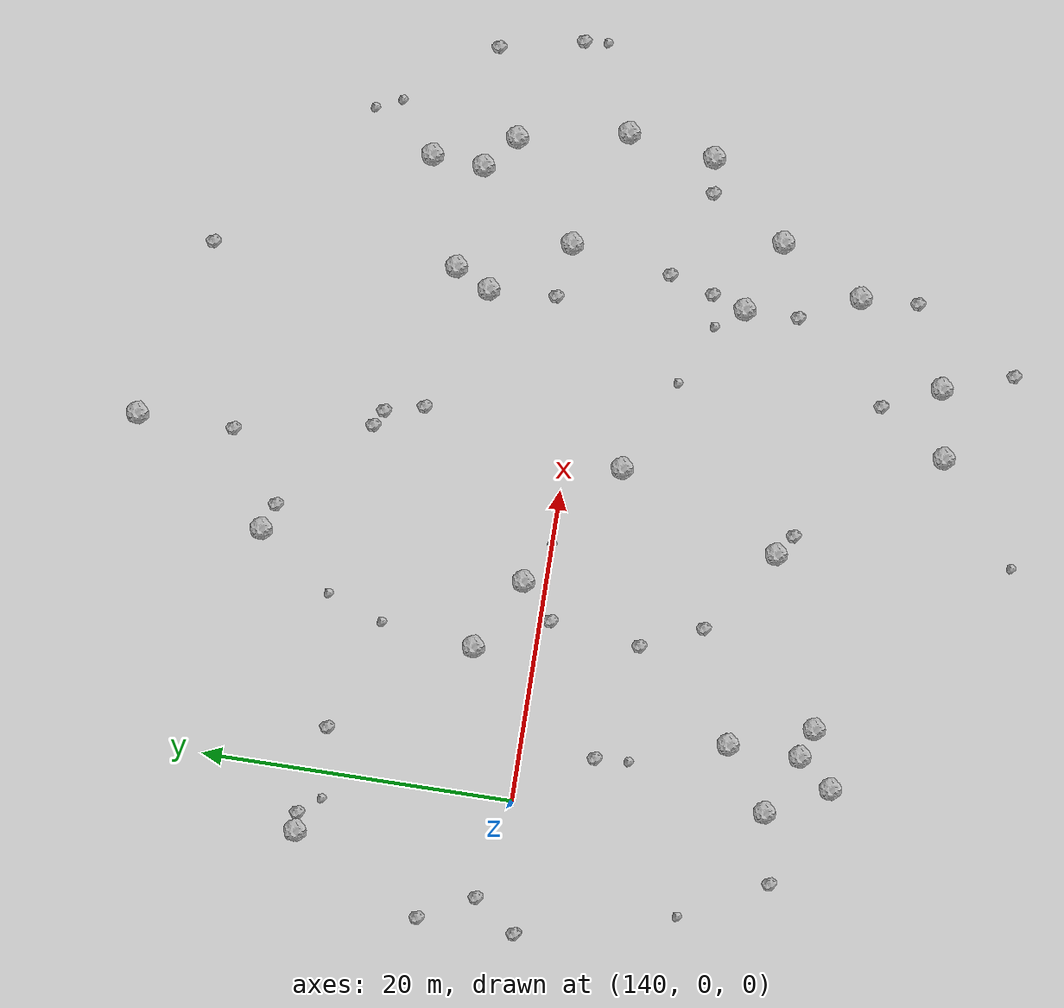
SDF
<sdf version="1.6">
 <world name="default">
  <include><uri>model://sun</uri></include>
  <model name="rock1_4_2">
   <include><uri>model://rock1</uri><pose>173.2920726651725 -9.883927966990228 0.5 0 0 0</pose></include>
  </model>
  <model name="rock1_4_3">
   <include><uri>model://rock1</uri><pose>165.7927010193815 -23.864831941311863 0.5 0 0 0</pose></include>
  </model>
  <model name="rock1_4_4">
   <include><uri>model://rock1</uri><pose>172.0938098103728 6.4987398337395845 0.5 0 0 0</pose></include>
  </model>
  <model name="rock1_4_5">
   <include><uri>model://rock1</uri><pose>162.05214207642794 -3.679491698687805 0.5 0 0 0</pose></include>
  </model>
  <model name="rock1_4_6">
   <include><uri>model://rock1</uri><pose>183.41079800805323 -0.8690768137374469 0.5 0 0 0</pose></include>
  </model>
  <model name="rock1_4_7">
   <include><uri>model://rock1</uri><pose>153.97237989263016 1.4452110576188346 0.5 0 0 0</pose></include>
  </model>
  <model name="rock1_4_8">
   <include><uri>model://rock1</uri><pose>149.37118563068685 3.954546829192026 0.5 0 0 0</pose></include>
  </model>
  <model name="rock1_4_9">
   <include><uri>model://rock1</uri><pose>145.61689614415383 -17.623374874773713 0.5 0 0 0</pose></include>
  </model>
  <model name="rock1_4_10">
   <include><uri>model://rock1</uri><pose>180.11019307238783 11.385242140425703 0.5 0 0 0</pose></include>
  </model>
  <model name="rock1_4_11">
   <include><uri>model://rock1</uri><pose>143.8843023636323 -19.841323630577335 0.5 0 0 0</pose></include>
  </model>
  <model name="rock1_4_12">
   <include><uri>model://rock1</uri><pose>170.18320254073177 -23.081588381636294 0.5 0 0 0</pose></include>
  </model>
  <model name="rock1_4_13">
   <include><uri>model://rock1</uri><pose>141.77460329374617 -15.93079078366554 0.5 0 0 0</pose></include>
  </model>
  <model name="rock1_4_14">
   <include><uri>model://rock1</uri><pose>177.9228637751346 -11.689131440030913 0.5 0 0 0</pose></include>
  </model>
  <model name="rock1_4_15">
   <include><uri>model://rock1</uri><pose>160.85536051091103 27.43847223861986 0.5 0 0 0</pose></include>
  </model>
  <model name="rock1_4_16">
   <include><uri>model://rock1</uri><pose>173.214709317504 8.755429576058155 0.5 0 0 0</pose></include>
  </model>
  <model name="rock1_4_17">
   <include><uri>model://rock1</uri><pose>175.79476830132225 1.6680764953584166 0.5 0 0 0</pose></include>
  </model>
  <model name="rock1_4_18">
   <include><uri>model://rock1</uri><pose>179.9005911071718 8.038715967701613 0.5 0 0 0</pose></include>
  </model>
  <model name="rock1_4_19">
   <include><uri>model://rock1</uri><pose>147.48134839645823 -18.25957367758657 0.5 0 0 0</pose></include>
  </model>
  <model name="rock1_4_20">
   <include><uri>model://rock1</uri><pose>175.1435564738477 -17.113533226225787 0.5 0 0 0</pose></include>
  </model>
  <model name="rock1_4_21">
   <include><uri>model://rock1</uri><pose>158.11396734641556 -14.207853692754329 0.5 0 0 0</pose></include>
  </model>
  <model name="rock1_4_22">
   <include><uri>model://rock1</uri><pose>154.74515820263392 18.479796634942772 0.5 0 0 0</pose></include>
  </model>
  <model name="rock1_4_23">
   <include><uri>model://rock1</uri><pose>182.64804861643455 -6.487580562604801 0.5 0 0 0</pose></include>
  </model>
  <model name="rock1_4_24">
   <include><uri>model://rock1</uri><pose>182.02273460936283 6.189321033892497 0.5 0 0 0</pose></include>
  </model>
  <model name="rock1_4_25">
   <include><uri>model://rock1</uri><pose>136.1339123159862 13.34557204190991 0.5 0 0 0</pose></include>
  </model>
  <model name="rock1_4_26">
   <include><uri>model://rock1</uri><pose>145.6779372494825 -12.99927361382072 0.5 0 0 0</pose></include>
  </model>
  <model name="rock2_4_0">
   <include><uri>model://rock2</uri><pose>180.37899698523623 -6.786027845286103 0.3 0 0 0</pose></include>
  </model>
  <model name="rock2_4_1">
   <include><uri>model://rock2</uri><pose>173.92935269059004 -7.711338693995167 0.3 0 0 0</pose></include>
  </model>
  <model name="rock2_4_2">
   <include><uri>model://rock2</uri><pose>175.32872909775432 -20.798713399729504 0.3 0 0 0</pose></include>
  </model>
  <model name="rock2_4_3">
   <include><uri>model://rock2</uri><pose>173.28758809659425 -13.34770420126145 0.3 0 0 0</pose></include>
  </model>
  <model name="rock2_4_4">
   <include><uri>model://rock2</uri><pose>150.9870519077569 -6.473581556030378 0.3 0 0 0</pose></include>
  </model>
  <model name="rock2_4_5">
   <include><uri>model://rock2</uri><pose>151.70951015164775 -0.6398018075412715 0.3 0 0 0</pose></include>
  </model>
  <model name="rock2_4_6">
   <include><uri>model://rock2</uri><pose>171.65080758066784 -27.562981206936122 0.3 0 0 0</pose></include>
  </model>
  <model name="rock2_4_7">
   <include><uri>model://rock2</uri><pose>163.37305451172193 11.91932170288409 0.3 0 0 0</pose></include>
  </model>
  <model name="rock2_4_8">
   <include><uri>model://rock2</uri><pose>187.62951227656862 8.24458293419292 0.3 0 0 0</pose></include>
  </model>
  <model name="rock2_4_9">
   <include><uri>model://rock2</uri><pose>142.88758221231876 12.370413073194307 0.3 0 0 0</pose></include>
  </model>
  <model name="rock2_4_10">
   <include><uri>model://rock2</uri><pose>152.71259881890205 -10.36356328224468 0.3 0 0 0</pose></include>
  </model>
  <model name="rock2_4_11">
   <include><uri>model://rock2</uri><pose>188.81659372623858 2.8889676906714925 0.3 0 0 0</pose></include>
  </model>
  <model name="rock2_4_12">
   <include><uri>model://rock2</uri><pose>159.41243124466803 -15.139514985129791 0.3 0 0 0</pose></include>
  </model>
  <model name="rock2_4_13">
   <include><uri>model://rock2</uri><pose>172.46226035678356 24.39825173864414 0.3 0 0 0</pose></include>
  </model>
  <model name="rock2_4_14">
   <include><uri>model://rock2</uri><pose>137.2503097601685 13.41829786811497 0.3 0 0 0</pose></include>
  </model>
  <model name="rock2_4_15">
   <include><uri>model://rock2</uri><pose>156.4081559077962 17.830719198987637 0.3 0 0 0</pose></include>
  </model>
  <model name="rock2_4_16">
   <include><uri>model://rock2</uri><pose>160.80277462251064 21.264242502392577 0.3 0 0 0</pose></include>
  </model>
  <model name="rock2_4_17">
   <include><uri>model://rock2</uri><pose>162.3546450389025 12.469518756130938 0.3 0 0 0</pose></include>
  </model>
  <model name="rock2_4_18">
   <include><uri>model://rock2</uri><pose>174.77731291254932 -4.840367304718548 0.3 0 0 0</pose></include>
  </model>
  <model name="rock2_4_19">
   <include><uri>model://rock2</uri><pose>168.44744793404732 -19.447143607388597 0.3 0 0 0</pose></include>
  </model>
  <model name="rock2_4_20">
   <include><uri>model://rock2</uri><pose>137.32453168967868 -16.913646419307444 0.3 0 0 0</pose></include>
  </model>
  <model name="rock2_4_21">
   <include><uri>model://rock2</uri><pose>133.6498755750877 1.382539890047724 0.3 0 0 0</pose></include>
  </model>
  <model name="rock2_4_22">
   <include><uri>model://rock2</uri><pose>143.50754862124447 -4.745082843839345 0.3 0 0 0</pose></include>
  </model>
  <model name="rock2_4_23">
   <include><uri>model://rock2</uri><pose>131.82458701121382 4.887169775898997 0.3 0 0 0</pose></include>
  </model>
  <model name="rock2_4_24">
   <include><uri>model://rock2</uri><pose>131.74122232201893 -1.3483138907758772 0.3 0 0 0</pose></include>
  </model>
  <model name="rock2_4_25">
   <include><uri>model://rock2</uri><pose>172.29434016314937 2.163885949234242 0.3 0 0 0</pose></include>
  </model>
  <model name="rock2_4_26">
   <include><uri>model://rock2</uri><pose>164.02926349797656 9.39721941028158 0.3 0 0 0</pose></include>
  </model>
  <model name="rock3_4_0">
   <include><uri>model://rock3</uri><pose>138.33675895068362 11.997102927834796 0.2 0 0 0</pose></include>
  </model>
  <model name="rock3_4_1">
   <include><uri>model://rock3</uri><pose>167.94669187712086 -6.403532975453533 0.2 0 0 0</pose></include>
  </model>
  <model name="rock3_4_2">
   <include><uri>model://rock3</uri><pose>182.55597287930178 15.46658024265534 0.2 0 0 0</pose></include>
  </model>
  <model name="rock3_4_3">
   <include><uri>model://rock3</uri><pose>150.00187132008585 9.96020662639804 0.2 0 0 0</pose></include>
  </model>
  <model name="rock3_4_4">
   <include><uri>model://rock3</uri><pose>143.59106439855952 -6.943175422596685 0.2 0 0 0</pose></include>
  </model>
  <model name="rock3_4_5">
   <include><uri>model://rock3</uri><pose>183.31403268510843 13.797145595966384 0.2 0 0 0</pose></include>
  </model>
  <model name="rock3_4_6">
   <include><uri>model://rock3</uri><pose>156.54115679078117 -0.007266165875098096 0.2 0 0 0</pose></include>
  </model>
  <model name="rock3_4_7">
   <include><uri>model://rock3</uri><pose>151.29674614188414 13.586251796790052 0.2 0 0 0</pose></include>
  </model>
  <model name="rock3_4_8">
   <include><uri>model://rock3</uri><pose>159.43300764795768 -29.185954475542072 0.2 0 0 0</pose></include>
  </model>
  <model name="rock3_4_9">
   <include><uri>model://rock3</uri><pose>131.83199612067085 -1.5828002989920478 0.2 0 0 0</pose></include>
  </model>
  <model name="rock3_4_10">
   <include><uri>model://rock3</uri><pose>171.89198818092132 -8.165163872941182 0.2 0 0 0</pose></include>
  </model>
  <model name="rock3_4_11">
   <include><uri>model://rock3</uri><pose>188.9230180960676 1.3393150247275365 0.2 0 0 0</pose></include>
  </model>
  <model name="rock3_4_12">
   <include><uri>model://rock3</uri><pose>134.373782354071 -11.45323901661773 0.2 0 0 0</pose></include>
  </model>
 </world>
</sdf>
